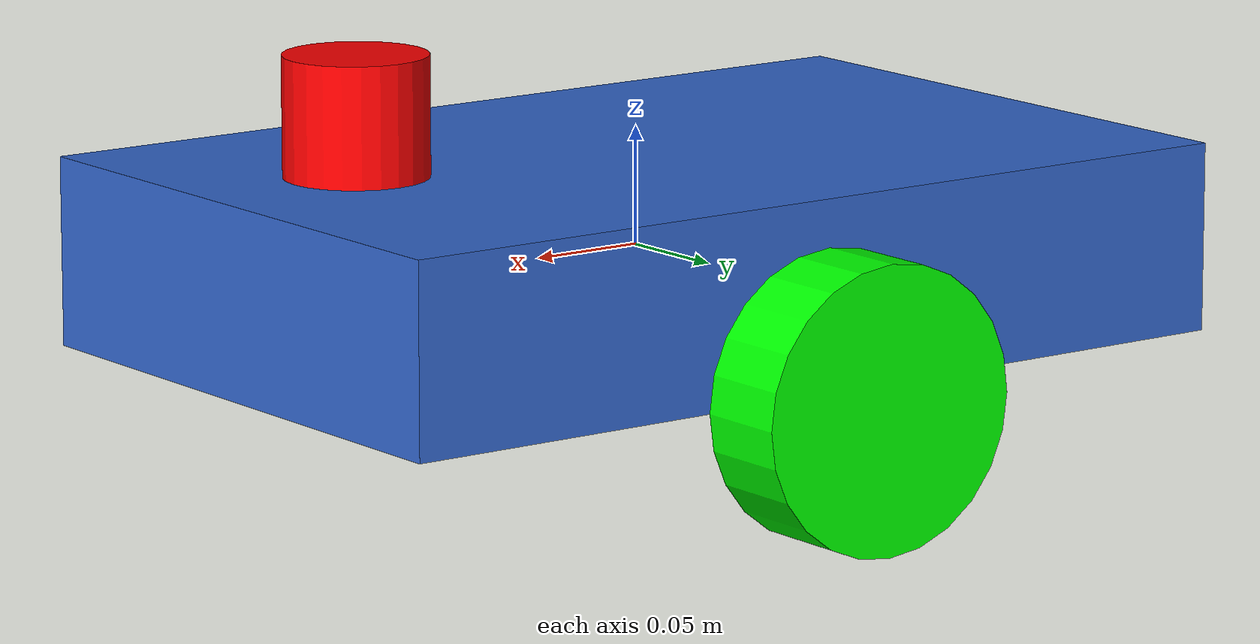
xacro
<?xml version="1.0"?>
<robot name="simple_robot" xmlns:xacro="http://www.ros.org/wiki/xacro">

  <!-- 参数 -->
  <xacro:property name="base_length" value="0.40"/>
  <xacro:property name="base_width"  value="0.26"/>
  <xacro:property name="base_height" value="0.08"/>

  <xacro:property name="wheel_radius" value="0.06"/>
  <xacro:property name="wheel_width"  value="0.04"/>

  <xacro:property name="laser_radius" value="0.03"/>
  <xacro:property name="laser_height" value="0.05"/>

  <!-- base_link -->
  <link name="base_link">
    <visual>
      <origin xyz="0 0 0" rpy="0 0 0"/>
      <geometry>
        <box size="${base_length} ${base_width} ${base_height}"/>
      </geometry>
      <material name="blue">
        <color rgba="0.2 0.4 0.8 1.0"/>
      </material>
    </visual>

    <collision>
      <origin xyz="0 0 0" rpy="0 0 0"/>
      <geometry>
        <box size="${base_length} ${base_width} ${base_height}"/>
      </geometry>
    </collision>

    <inertial>
      <origin xyz="0 0 0" rpy="0 0 0"/>
      <mass value="2.0"/>
      <inertia
        ixx="0.02" ixy="0.0" ixz="0.0"
        iyy="0.03" iyz="0.0"
        izz="0.04"/>
    </inertial>
  </link>

  <!-- left_wheel -->
  <link name="left_wheel">
    <visual>
      <!-- 圆柱默认沿 z 轴，转成车轮方向 -->
      <origin xyz="0 0 0" rpy="1.5708 0 0"/>
      <geometry>
        <cylinder radius="${wheel_radius}" length="${wheel_width}"/>
      </geometry>
      <material name="green">
        <color rgba="0.0 1.0 0.0 1.0"/>
      </material>
    </visual>

    <collision>
      <origin xyz="0 0 0" rpy="1.5708 0 0"/>
      <geometry>
        <cylinder radius="${wheel_radius}" length="${wheel_width}"/>
      </geometry>
    </collision>

    <inertial>
      <origin xyz="0 0 0" rpy="0 0 0"/>
      <mass value="0.3"/>
      <inertia
        ixx="0.001" ixy="0.0" ixz="0.0"
        iyy="0.001" iyz="0.0"
        izz="0.001"/>
    </inertial>
  </link>

  <!-- right_wheel -->
  <link name="right_wheel">
    <visual>
      <origin xyz="0 0 0" rpy="1.5708 0 0"/>
      <geometry>
        <cylinder radius="${wheel_radius}" length="${wheel_width}"/>
      </geometry>
      <material name="yellow">
        <color rgba="1.0 1.0 0.0 1.0"/>
      </material>
    </visual>

    <collision>
      <origin xyz="0 0 0" rpy="1.5708 0 0"/>
      <geometry>
        <cylinder radius="${wheel_radius}" length="${wheel_width}"/>
      </geometry>
    </collision>

    <inertial>
      <origin xyz="0 0 0" rpy="0 0 0"/>
      <mass value="0.3"/>
      <inertia
        ixx="0.001" ixy="0.0" ixz="0.0"
        iyy="0.001" iyz="0.0"
        izz="0.001"/>
    </inertial>
  </link>

  <!-- laser_link -->
  <link name="laser_link">
    <visual>
      <origin xyz="0 0 0" rpy="0 0 0"/>
      <geometry>
        <cylinder radius="${laser_radius}" length="${laser_height}"/>
      </geometry>
      <material name="red">
        <color rgba="1.0 0.0 0.0 1.0"/>
      </material>
    </visual>

    <collision>
      <origin xyz="0 0 0" rpy="0 0 0"/>
      <geometry>
        <cylinder radius="${laser_radius}" length="${laser_height}"/>
      </geometry>
    </collision>

    <inertial>
      <origin xyz="0 0 0" rpy="0 0 0"/>
      <mass value="0.1"/>
      <inertia
        ixx="0.0001" ixy="0.0" ixz="0.0"
        iyy="0.0001" iyz="0.0"
        izz="0.0001"/>
    </inertial>
  </link>

  <!-- joints -->
 <joint name="left_wheel_joint" type="continuous">
  <parent link="base_link"/>
  <child link="left_wheel"/>
  <origin xyz="0 0.15 -0.04" rpy="0 0 0"/>
  <axis xyz="0 1 0"/>
 </joint>

 <joint name="right_wheel_joint" type="continuous">
  <parent link="base_link"/>
  <child link="right_wheel"/>
  <origin xyz="0 -0.15 -0.04" rpy="0 0 0"/>
  <axis xyz="0 1 0"/>
 </joint>

  <joint name="base_to_laser" type="fixed">
    <parent link="base_link"/>
    <child link="laser_link"/>
    <origin xyz="0.14 0 0.07" rpy="0 0 0"/>
  </joint>

  <!-- Gazebo diff drive -->
  <gazebo>
   <plugin
    filename="gz-sim-diff-drive-system"
    name="gz::sim::systems::DiffDrive">
    <left_joint>left_wheel_joint</left_joint>
    <right_joint>right_wheel_joint</right_joint>
    <wheel_separation>0.30</wheel_separation>
    <wheel_radius>0.06</wheel_radius>
    <topic>/model/simple_robot/cmd_vel</topic>
   </plugin>
  </gazebo>
  <!-- Gazebo 激光雷达传感器 -->
  <gazebo reference="laser_link">
    <sensor name="laser_sensor" type="gpu_lidar">
      <pose>0 0 0.05 0 0 0</pose>
      <always_on>1</always_on>
      <update_rate>10</update_rate>
      <visualize>true</visualize>
      <topic>/scan</topic>

      <lidar>
        <scan>
          <horizontal>
            <samples>360</samples>
            <resolution>1</resolution>
            <min_angle>-1.5708</min_angle>
            <max_angle>1.5708</max_angle>
          </horizontal>
        </scan>

        <range>
          <min>0.15</min>
          <max>6.0</max>
          <resolution>0.01</resolution>
        </range>

        <noise>
          <type>gaussian</type>
          <mean>0.0</mean>
          <stddev>0.01</stddev>
        </noise>
      </lidar>
    </sensor>
  </gazebo>

</robot>
